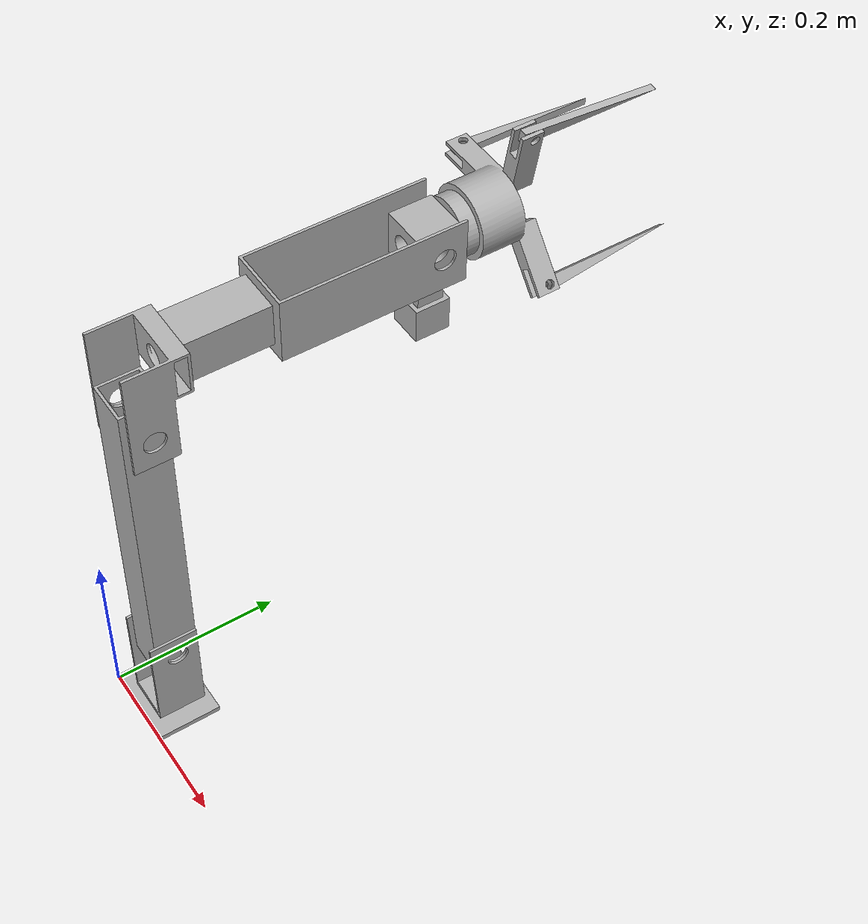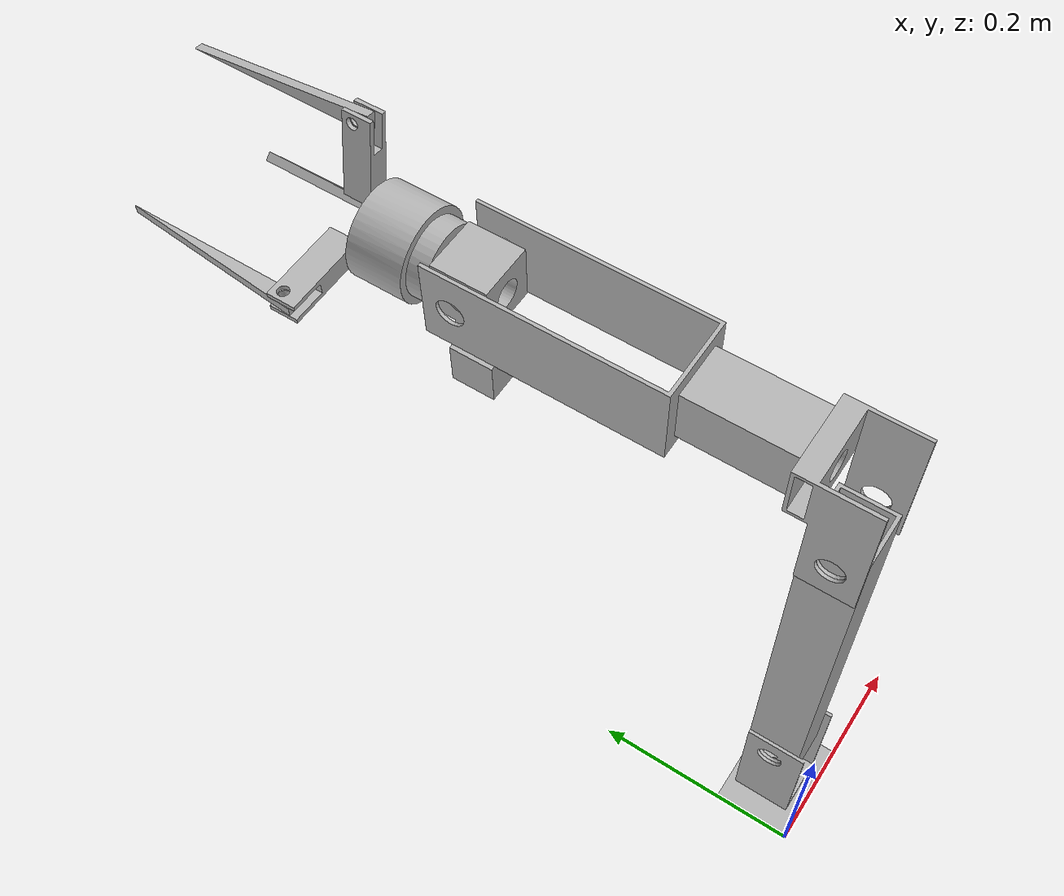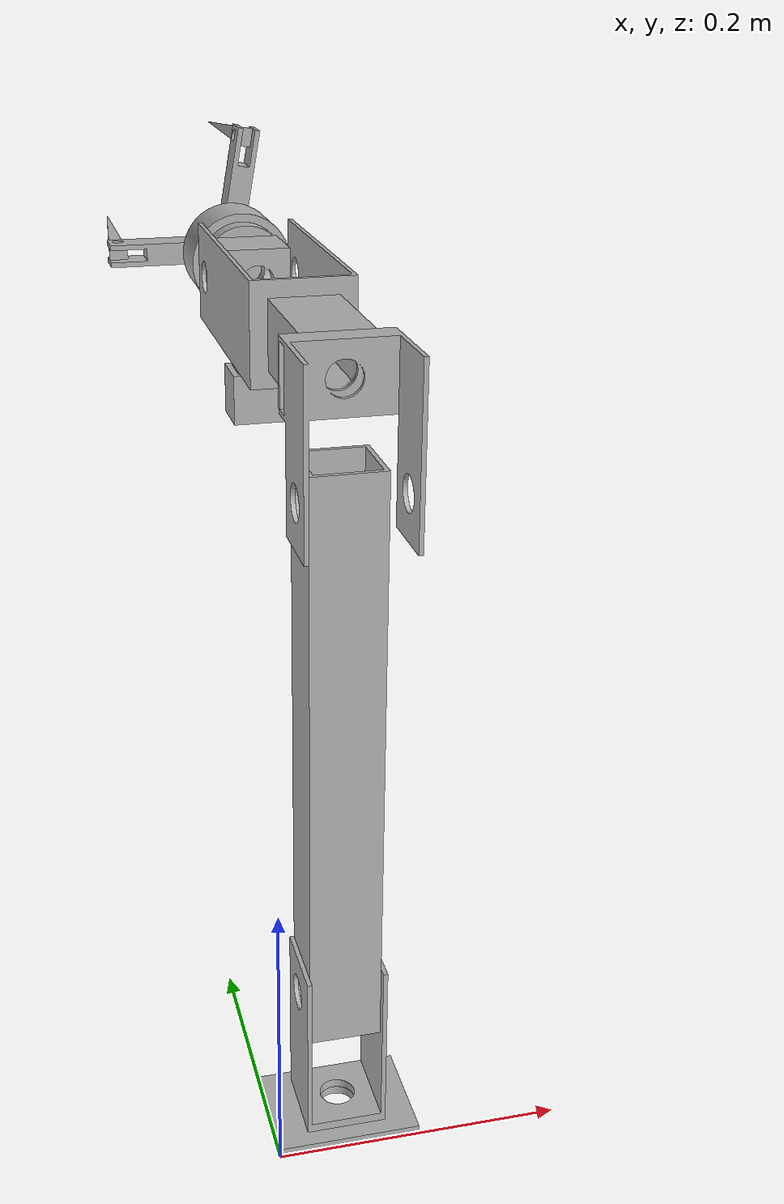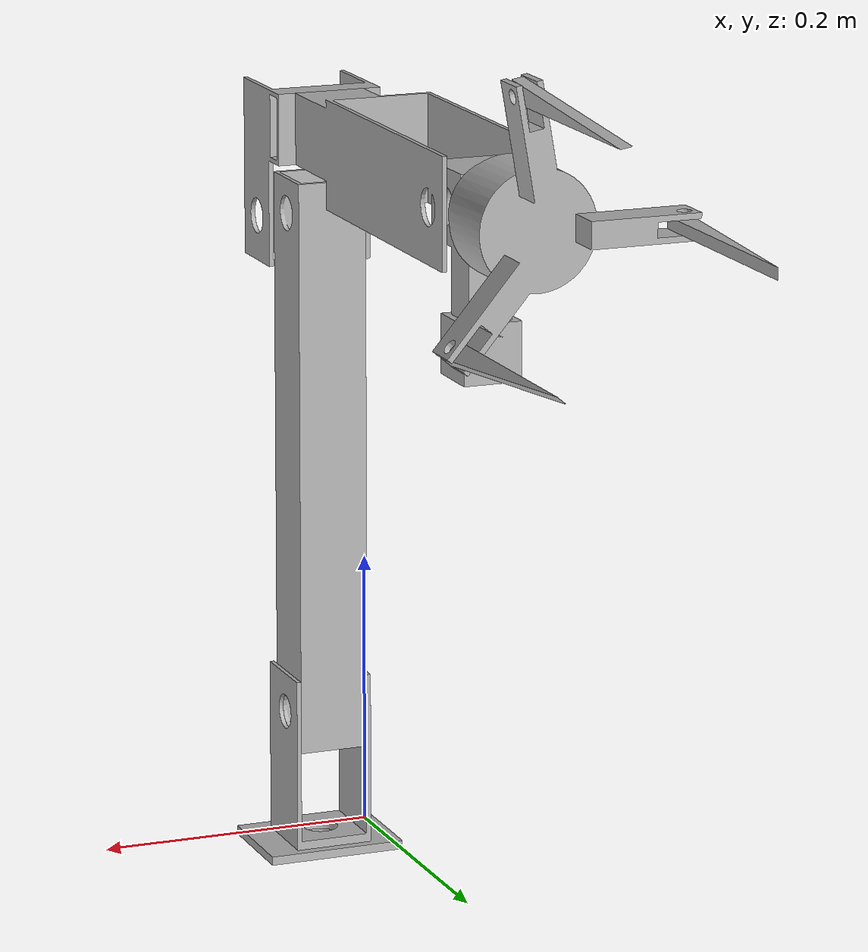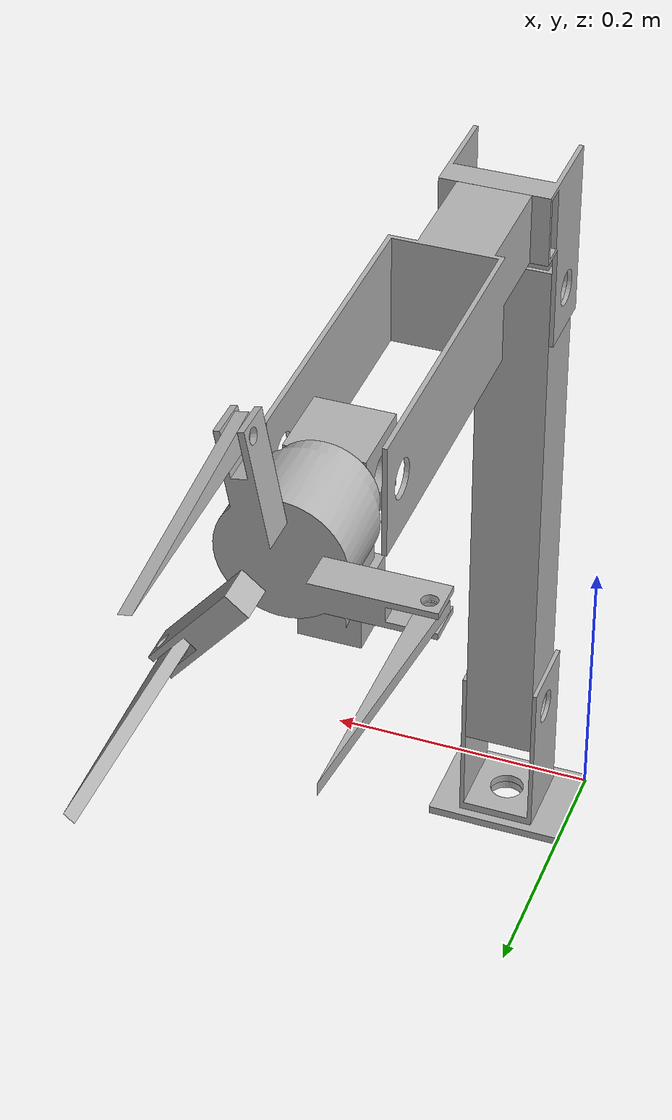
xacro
<?xml version="1.0" ?>
<robot name="Arm_2023" xmlns:xacro="http://www.ros.org/wiki/xacro">

<xacro:include filename="$(find rover)/rover/simulation/urdfs/Arm_2023/materials.xacro" />
<link name="base_link">
  <inertial>
    <origin xyz="0.049999999999908465 0.03732491617294113 0.003125" rpy="0 0 0"/>
    <mass value="0.3438852516301944"/>
    <inertia ixx="0.000173" iyy="0.000307" izz="0.000477" ixy="0.0" iyz="0.0" ixz="0.0"/>
  </inertial>
  <visual>
    <origin xyz="0 0 0" rpy="0 0 0"/>
    <geometry>
      <mesh filename="package://rover/rover/simulation/meshes/Arm_2023/base_link.stl" scale="0.001 0.001 0.001"/>
    </geometry>
    <material name="silver"/>
  </visual>
  <collision>
    <origin xyz="0 0 0" rpy="0 0 0"/>
    <geometry>
      <mesh filename="package://rover/rover/simulation/meshes/Arm_2023/base_link.stl" scale="0.001 0.001 0.001"/>
    </geometry>
  </collision>
</link>

<!-- Target Position Arm -->

<link name="Link_2">
  <inertial>
    <origin xyz="0.025 -3.469446951953614e-17 0.18250000000000027" rpy="0 0 0"/>
    <mass value="1.86067089388539"/>
    <inertia ixx="0.02649" iyy="0.026465" izz="0.001376" ixy="-0.0" iyz="0.0" ixz="-0.0"/>
  </inertial>
  <visual>
    <origin xyz="-0.025 -0.043125 -0.1039" rpy="0 0 0"/>
    <geometry>
      <mesh filename="package://rover/rover/simulation/meshes/Arm_2023/Link_2_1.stl" scale="0.001 0.001 0.001"/>
    </geometry>
    <material name="silver"/>
  </visual>
  <collision>
    <origin xyz="-0.025 -0.043125 -0.1039" rpy="0 0 0"/>
    <geometry>
      <mesh filename="package://rover/rover/simulation/meshes/Arm_2023/Link_2_1.stl" scale="0.001 0.001 0.001"/>
    </geometry>
  </collision>
</link>

<link name="Link_3">
  <inertial>
    <origin xyz="0.03437499999999986 -0.04852387230509649 0.01494234846228587" rpy="0 0 0"/>
    <mass value="0.4930537063853911"/>
    <inertia ixx="0.000808" iyy="0.000697" izz="0.001059" ixy="0.0" iyz="0.000147" ixz="0.0"/>
  </inertial>
  <visual>
    <origin xyz="-0.025 -0.043125 -0.4689" rpy="0 0 0"/>
    <geometry>
      <mesh filename="package://rover/rover/simulation/meshes/Arm_2023/Link_3_1.stl" scale="0.001 0.001 0.001"/>
    </geometry>
    <material name="silver"/>
  </visual>
  <collision>
    <origin xyz="-0.025 -0.043125 -0.4689" rpy="0 0 0"/>
    <geometry>
      <mesh filename="package://rover/rover/simulation/meshes/Arm_2023/Link_3_1.stl" scale="0.001 0.001 0.001"/>
    </geometry>
  </collision>
</link>

<link name="Link_4">
  <inertial>
    <origin xyz="-4.544770722816893e-05 5.898059818321144e-17 0.13249483155448072" rpy="0 0 0"/>
    <mass value="1.3362092993202992"/>
    <inertia ixx="0.010972" iyy="0.01038" izz="0.00176" ixy="0.0" iyz="0.0" ixz="-5e-06"/>
  </inertial>
  <visual>
    <origin xyz="-0.059375 0.025375 -0.5139" rpy="0 0 0"/>
    <geometry>
      <mesh filename="package://rover/rover/simulation/meshes/Arm_2023/Link_4_1.stl" scale="0.001 0.001 0.001"/>
    </geometry>
    <material name="silver"/>
  </visual>
  <collision>
    <origin xyz="-0.059375 0.025375 -0.5139" rpy="0 0 0"/>
    <geometry>
      <mesh filename="package://rover/rover/simulation/meshes/Arm_2023/Link_4_1.stl" scale="0.001 0.001 0.001"/>
    </geometry>
  </collision>
</link>

<link name="Link_5">
  <inertial>
    <origin xyz="-0.024457508265359702 0.028875000000000362 -0.00023164099942307725" rpy="0 0 0"/>
    <mass value="1.03093485941646"/>
    <inertia ixx="0.000373" iyy="0.001033" izz="0.001033" ixy="0.0" iyz="0.0" ixz="-8e-06"/>
  </inertial>
  <visual>
    <origin xyz="-0.0667 0.05425 -0.790676" rpy="0 0 0"/>
    <geometry>
      <mesh filename="package://rover/rover/simulation/meshes/Arm_2023/Link_5_1.stl" scale="0.001 0.001 0.001"/>
    </geometry>
    <material name="silver"/>
  </visual>
  <collision>
    <origin xyz="-0.0667 0.05425 -0.790676" rpy="0 0 0"/>
    <geometry>
      <mesh filename="package://rover/rover/simulation/meshes/Arm_2023/Link_5_1.stl" scale="0.001 0.001 0.001"/>
    </geometry>
  </collision>
</link>

<link name="Link_1">
  <inertial>
    <origin xyz="-7.179673522372809e-14 -0.00017173384764001404 0.045632894964534494" rpy="0 0 0"/>
    <mass value="0.4382416946666404"/>
    <inertia ixx="0.000836" iyy="0.000966" izz="0.000383" ixy="0.0" iyz="4e-06" ixz="-0.0"/>
  </inertial>
  <visual>
    <origin xyz="-0.05 -0.04 -0.00625" rpy="0 0 0"/>
    <geometry>
      <mesh filename="package://rover/rover/simulation/meshes/Arm_2023/Link_1_1.stl" scale="0.001 0.001 0.001"/>
    </geometry>
    <material name="silver"/>
  </visual>
  <collision>
    <origin xyz="-0.05 -0.04 -0.00625" rpy="0 0 0"/>
    <geometry>
      <mesh filename="package://rover/rover/simulation/meshes/Arm_2023/Link_1_1.stl" scale="0.001 0.001 0.001"/>
    </geometry>
  </collision>
</link>

<link name="Link_6">
  <inertial>
    <origin xyz="0.0007934173167834443 -0.0006657561778822887 0.04453519096184422" rpy="0 0 0"/>
    <mass value="3.060647277391577"/>
    <inertia ixx="0.003765" iyy="0.003842" izz="0.003929" ixy="0.000217" iyz="7.2e-05" ixz="-8.6e-05"/>
  </inertial>
  <visual>
    <origin xyz="-0.059375 0.025375 -0.815676" rpy="0 0 0"/>
    <geometry>
      <mesh filename="package://rover/rover/simulation/meshes/Arm_2023/Link_6_1.stl" scale="0.001 0.001 0.001"/>
    </geometry>
    <material name="silver"/>
  </visual>
  <collision>
    <origin xyz="-0.059375 0.025375 -0.815676" rpy="0 0 0"/>
    <geometry>
      <mesh filename="package://rover/rover/simulation/meshes/Arm_2023/Link_6_1.stl" scale="0.001 0.001 0.001"/>
    </geometry>
  </collision>
</link>

<link name="Link_7">
  <inertial>
    <origin xyz="-0.0017868967775850602 -0.005028096180721024 0.04636811966902066" rpy="0 0 0"/>
    <mass value="0.07042769953386388"/>
    <inertia ixx="9.8e-05" iyy="9.8e-05" izz="1e-06" ixy="0.0" iyz="3e-06" ixz="-4e-06"/>
  </inertial>
  <visual>
    <origin xyz="0.007887 -0.037592 -0.899176" rpy="0 0 0"/>
    <geometry>
      <mesh filename="package://rover/rover/simulation/meshes/Arm_2023/Link_7_1.stl" scale="0.001 0.001 0.001"/>
    </geometry>
    <material name="silver"/>
  </visual>
  <collision>
    <origin xyz="0.007887 -0.037592 -0.899176" rpy="0 0 0"/>
    <geometry>
      <mesh filename="package://rover/rover/simulation/meshes/Arm_2023/Link_7_1.stl" scale="0.001 0.001 0.001"/>
    </geometry>
  </collision>
</link>

<link name="Camera_link">
  <inertial>
    <origin xyz="-0.01999999999995162 3.608224830031759e-16 0.0008309682104639116" rpy="0 0 0"/>
    <mass value="0.5216667986958432"/>
    <inertia ixx="0.000144" iyy="0.000144" izz="0.000135" ixy="0.0" iyz="0.0" ixz="-0.0"/>
  </inertial>
  <visual>
    <origin xyz="0.015625 0.025375 -0.79" rpy="0 0 0"/>
    <geometry>
      <mesh filename="package://rover/rover/simulation/meshes/Arm_2023/Camera_link_1.stl" scale="0.001 0.001 0.001"/>
    </geometry>
    <material name="silver"/>
  </visual>
  <collision>
    <origin xyz="0.015625 0.025375 -0.79" rpy="0 0 0"/>
    <geometry>
      <mesh filename="package://rover/rover/simulation/meshes/Arm_2023/Camera_link_1.stl" scale="0.001 0.001 0.001"/>
    </geometry>
  </collision>
</link>

<link name="Link_8">
  <inertial>
    <origin xyz="-0.002703449377635364 0.004600114186135835 0.04636811966902088" rpy="0 0 0"/>
    <mass value="0.07042769953386384"/>
    <inertia ixx="9.8e-05" iyy="9.8e-05" izz="1e-06" ixy="-0.0" iyz="1e-06" ixz="5e-06"/>
  </inertial>
  <visual>
    <origin xyz="-0.150846 0.014323 -0.899176" rpy="0 0 0"/>
    <geometry>
      <mesh filename="package://rover/rover/simulation/meshes/Arm_2023/Link_8_1.stl" scale="0.001 0.001 0.001"/>
    </geometry>
    <material name="silver"/>
  </visual>
  <collision>
    <origin xyz="-0.150846 0.014323 -0.899176" rpy="0 0 0"/>
    <geometry>
      <mesh filename="package://rover/rover/simulation/meshes/Arm_2023/Link_8_1.stl" scale="0.001 0.001 0.001"/>
    </geometry>
  </collision>
</link>

<link name="Link_9">
  <inertial>
    <origin xyz="0.005000000000008033 0.001863066826134921 0.04636811966902088" rpy="0 0 0"/>
    <mass value="0.07042769953386384"/>
    <inertia ixx="9.8e-05" iyy="9.8e-05" izz="1e-06" ixy="-0.0" iyz="-5e-06" ixz="0.0"/>
  </inertial>
  <visual>
    <origin xyz="-0.054375 0.117375 -0.899176" rpy="0 0 0"/>
    <geometry>
      <mesh filename="package://rover/rover/simulation/meshes/Arm_2023/Link_9_1.stl" scale="0.001 0.001 0.001"/>
    </geometry>
    <material name="silver"/>
  </visual>
  <collision>
    <origin xyz="-0.054375 0.117375 -0.899176" rpy="0 0 0"/>
    <geometry>
      <mesh filename="package://rover/rover/simulation/meshes/Arm_2023/Link_9_1.stl" scale="0.001 0.001 0.001"/>
    </geometry>
  </collision>
</link>

<joint name="Joint_1" type="continuous">
  <origin xyz="0.05 0.04 0.00625" rpy="0 0 0"/>
  <parent link="base_link"/>
  <child link="Link_1"/>
  <axis xyz="0.0 0.0 1.0"/>
</joint>

<joint name="Joint_2" type="continuous">
  <origin xyz="-0.025 0.003125 0.09765" rpy="0 0 0"/>
  <parent link="Link_1"/>
  <child link="Link_2"/>
  <axis xyz="1.0 0.0 -0.0"/>
</joint>

<joint name="Joint_3" type="continuous">
  <origin xyz="0.0 0.0 0.365" rpy="-1.57 0 0"/>
  <parent link="Link_2"/>
  <child link="Link_3"/>
  <axis xyz="1.0 -0.0 0.0"/>
</joint>

<joint name="Joint_4" type="continuous">
  <origin xyz="0.034375 -0.0685 0.045" rpy="0 0 -1.57"/>
  <parent link="Link_3"/>
  <child link="Link_4"/>
  <axis xyz="0.0 0.0 1.0"/>
</joint>

<joint name="Joint_5" type="continuous">
  <origin xyz="0.007325 -0.028875 0.276776" rpy="0 0 0"/>
  <parent link="Link_4"/>
  <child link="Link_5"/>
  <axis xyz="-0.0 -1.0 -0.0"/>
</joint>

<joint name="Joint_6" type="continuous">
  <origin xyz="-0.007325 0.028875 0.025" rpy="0 0 0"/>
  <parent link="Link_5"/>
  <child link="Link_6"/>
  <axis xyz="-0.0 0.0 1.0"/>
</joint>

<joint name="Joint_7" type="continuous">
  <origin xyz="-0.067262 0.062967 0.0835" rpy="0 0 0"/>
  <parent link="Link_6"/>
  <child link="Link_7"/>
  <axis xyz="0.642788 0.766044 0.0"/>
</joint>

<joint name="Camera_Joint" type="fixed">
  <origin xyz="-0.082325 0.028875 -0.000676" rpy="0 0 0"/>
  <parent link="Link_5"/>
  <child link="Camera_link"/>
</joint>

<joint name="Joint_8" type="continuous">
  <origin xyz="0.091471 0.011052 0.0835" rpy="0 0 0"/>
  <parent link="Link_6"/>
  <child link="Link_8"/>
  <axis xyz="0.173648 -0.984808 -0.0"/>
</joint>

<joint name="Joint_9" type="continuous">
  <origin xyz="-0.005 -0.092 0.0835" rpy="0 0 0"/>
  <parent link="Link_6"/>
  <child link="Link_9"/>
  <axis xyz="-1.0 0.0 0.0"/>
</joint>

<!-- Real Arm -->

<link name="Real_Link_2">
  <inertial>
    <origin xyz="0.025 -3.469446951953614e-17 0.18250000000000027" rpy="0 0 0"/>
    <mass value="1.86067089388539"/>
    <inertia ixx="0.02649" iyy="0.026465" izz="0.001376" ixy="-0.0" iyz="0.0" ixz="-0.0"/>
  </inertial>
  <visual>
    <origin xyz="-0.025 -0.043125 -0.1039" rpy="0 0 0"/>
    <geometry>
      <mesh filename="package://rover/rover/simulation/meshes/Arm_2023/Link_2_1.stl" scale="0.001 0.001 0.001"/>
    </geometry>
    <material name="sky-blue"/>
  </visual>
  <collision>
    <origin xyz="-0.025 -0.043125 -0.1039" rpy="0 0 0"/>
    <geometry>
      <mesh filename="package://rover/rover/simulation/meshes/Arm_2023/Link_2_1.stl" scale="0.001 0.001 0.001"/>
    </geometry>
  </collision>
</link>

<link name="Real_Link_3">
  <inertial>
    <origin xyz="0.03437499999999986 -0.04852387230509649 0.01494234846228587" rpy="0 0 0"/>
    <mass value="0.4930537063853911"/>
    <inertia ixx="0.000808" iyy="0.000697" izz="0.001059" ixy="0.0" iyz="0.000147" ixz="0.0"/>
  </inertial>
  <visual>
    <origin xyz="-0.025 -0.043125 -0.4689" rpy="0 0 0"/>
    <geometry>
      <mesh filename="package://rover/rover/simulation/meshes/Arm_2023/Link_3_1.stl" scale="0.001 0.001 0.001"/>
    </geometry>
    <material name="sky-blue"/>
  </visual>
  <collision>
    <origin xyz="-0.025 -0.043125 -0.4689" rpy="0 0 0"/>
    <geometry>
      <mesh filename="package://rover/rover/simulation/meshes/Arm_2023/Link_3_1.stl" scale="0.001 0.001 0.001"/>
    </geometry>
  </collision>
</link>

<link name="Real_Link_4">
  <inertial>
    <origin xyz="-4.544770722816893e-05 5.898059818321144e-17 0.13249483155448072" rpy="0 0 0"/>
    <mass value="1.3362092993202992"/>
    <inertia ixx="0.010972" iyy="0.01038" izz="0.00176" ixy="0.0" iyz="0.0" ixz="-5e-06"/>
  </inertial>
  <visual>
    <origin xyz="-0.059375 0.025375 -0.5139" rpy="0 0 0"/>
    <geometry>
      <mesh filename="package://rover/rover/simulation/meshes/Arm_2023/Link_4_1.stl" scale="0.001 0.001 0.001"/>
    </geometry>
    <material name="sky-blue"/>
  </visual>
  <collision>
    <origin xyz="-0.059375 0.025375 -0.5139" rpy="0 0 0"/>
    <geometry>
      <mesh filename="package://rover/rover/simulation/meshes/Arm_2023/Link_4_1.stl" scale="0.001 0.001 0.001"/>
    </geometry>
  </collision>
</link>

<link name="Real_Link_5">
  <inertial>
    <origin xyz="-0.024457508265359702 0.028875000000000362 -0.00023164099942307725" rpy="0 0 0"/>
    <mass value="1.03093485941646"/>
    <inertia ixx="0.000373" iyy="0.001033" izz="0.001033" ixy="0.0" iyz="0.0" ixz="-8e-06"/>
  </inertial>
  <visual>
    <origin xyz="-0.0667 0.05425 -0.790676" rpy="0 0 0"/>
    <geometry>
      <mesh filename="package://rover/rover/simulation/meshes/Arm_2023/Link_5_1.stl" scale="0.001 0.001 0.001"/>
    </geometry>
    <material name="sky-blue"/>
  </visual>
  <collision>
    <origin xyz="-0.0667 0.05425 -0.790676" rpy="0 0 0"/>
    <geometry>
      <mesh filename="package://rover/rover/simulation/meshes/Arm_2023/Link_5_1.stl" scale="0.001 0.001 0.001"/>
    </geometry>
  </collision>
</link>

<link name="Real_Link_1">
  <inertial>
    <origin xyz="-7.179673522372809e-14 -0.00017173384764001404 0.045632894964534494" rpy="0 0 0"/>
    <mass value="0.4382416946666404"/>
    <inertia ixx="0.000836" iyy="0.000966" izz="0.000383" ixy="0.0" iyz="4e-06" ixz="-0.0"/>
  </inertial>
  <visual>
    <origin xyz="-0.05 -0.04 -0.00625" rpy="0 0 0"/>
    <geometry>
      <mesh filename="package://rover/rover/simulation/meshes/Arm_2023/Link_1_1.stl" scale="0.001 0.001 0.001"/>
    </geometry>
    <material name="sky-blue"/>
  </visual>
  <collision>
    <origin xyz="-0.05 -0.04 -0.00625" rpy="0 0 0"/>
    <geometry>
      <mesh filename="package://rover/rover/simulation/meshes/Arm_2023/Link_1_1.stl" scale="0.001 0.001 0.001"/>
    </geometry>
  </collision>
</link>

<link name="Real_Link_6">
  <inertial>
    <origin xyz="0.0007934173167834443 -0.0006657561778822887 0.04453519096184422" rpy="0 0 0"/>
    <mass value="3.060647277391577"/>
    <inertia ixx="0.003765" iyy="0.003842" izz="0.003929" ixy="0.000217" iyz="7.2e-05" ixz="-8.6e-05"/>
  </inertial>
  <visual>
    <origin xyz="-0.059375 0.025375 -0.815676" rpy="0 0 0"/>
    <geometry>
      <mesh filename="package://rover/rover/simulation/meshes/Arm_2023/Link_6_1.stl" scale="0.001 0.001 0.001"/>
    </geometry>
    <material name="sky-blue"/>
  </visual>
  <collision>
    <origin xyz="-0.059375 0.025375 -0.815676" rpy="0 0 0"/>
    <geometry>
      <mesh filename="package://rover/rover/simulation/meshes/Arm_2023/Link_6_1.stl" scale="0.001 0.001 0.001"/>
    </geometry>
  </collision>
</link>

<link name="Real_Link_7">
  <inertial>
    <origin xyz="-0.0017868967775850602 -0.005028096180721024 0.04636811966902066" rpy="0 0 0"/>
    <mass value="0.07042769953386388"/>
    <inertia ixx="9.8e-05" iyy="9.8e-05" izz="1e-06" ixy="0.0" iyz="3e-06" ixz="-4e-06"/>
  </inertial>
  <visual>
    <origin xyz="0.007887 -0.037592 -0.899176" rpy="0 0 0"/>
    <geometry>
      <mesh filename="package://rover/rover/simulation/meshes/Arm_2023/Link_7_1.stl" scale="0.001 0.001 0.001"/>
    </geometry>
    <material name="sky-blue"/>
  </visual>
  <collision>
    <origin xyz="0.007887 -0.037592 -0.899176" rpy="0 0 0"/>
    <geometry>
      <mesh filename="package://rover/rover/simulation/meshes/Arm_2023/Link_7_1.stl" scale="0.001 0.001 0.001"/>
    </geometry>
  </collision>
</link>

<link name="Real_Camera_link">
  <inertial>
    <origin xyz="-0.01999999999995162 3.608224830031759e-16 0.0008309682104639116" rpy="0 0 0"/>
    <mass value="0.5216667986958432"/>
    <inertia ixx="0.000144" iyy="0.000144" izz="0.000135" ixy="0.0" iyz="0.0" ixz="-0.0"/>
  </inertial>
  <visual>
    <origin xyz="0.015625 0.025375 -0.79" rpy="0 0 0"/>
    <geometry>
      <mesh filename="package://rover/rover/simulation/meshes/Arm_2023/Camera_link_1.stl" scale="0.001 0.001 0.001"/>
    </geometry>
    <material name="sky-blue"/>
  </visual>
  <collision>
    <origin xyz="0.015625 0.025375 -0.79" rpy="0 0 0"/>
    <geometry>
      <mesh filename="package://rover/rover/simulation/meshes/Arm_2023/Camera_link_1.stl" scale="0.001 0.001 0.001"/>
    </geometry>
  </collision>
</link>

<link name="Real_Link_8">
  <inertial>
    <origin xyz="-0.002703449377635364 0.004600114186135835 0.04636811966902088" rpy="0 0 0"/>
    <mass value="0.07042769953386384"/>
    <inertia ixx="9.8e-05" iyy="9.8e-05" izz="1e-06" ixy="-0.0" iyz="1e-06" ixz="5e-06"/>
  </inertial>
  <visual>
    <origin xyz="-0.150846 0.014323 -0.899176" rpy="0 0 0"/>
    <geometry>
      <mesh filename="package://rover/rover/simulation/meshes/Arm_2023/Link_8_1.stl" scale="0.001 0.001 0.001"/>
    </geometry>
    <material name="sky-blue"/>
  </visual>
  <collision>
    <origin xyz="-0.150846 0.014323 -0.899176" rpy="0 0 0"/>
    <geometry>
      <mesh filename="package://rover/rover/simulation/meshes/Arm_2023/Link_8_1.stl" scale="0.001 0.001 0.001"/>
    </geometry>
  </collision>
</link>

<link name="Real_Link_9">
  <inertial>
    <origin xyz="0.005000000000008033 0.001863066826134921 0.04636811966902088" rpy="0 0 0"/>
    <mass value="0.07042769953386384"/>
    <inertia ixx="9.8e-05" iyy="9.8e-05" izz="1e-06" ixy="-0.0" iyz="-5e-06" ixz="0.0"/>
  </inertial>
  <visual>
    <origin xyz="-0.054375 0.117375 -0.899176" rpy="0 0 0"/>
    <geometry>
      <mesh filename="package://rover/rover/simulation/meshes/Arm_2023/Link_9_1.stl" scale="0.001 0.001 0.001"/>
    </geometry>
    <material name="sky-blue"/>
  </visual>
  <collision>
    <origin xyz="-0.054375 0.117375 -0.899176" rpy="0 0 0"/>
    <geometry>
      <mesh filename="package://rover/rover/simulation/meshes/Arm_2023/Link_9_1.stl" scale="0.001 0.001 0.001"/>
    </geometry>
  </collision>
</link>

<joint name="Real_Joint_1" type="continuous">
  <origin xyz="0.05 0.04 0.00625" rpy="0 0 0"/>
  <parent link="base_link"/>
  <child link="Real_Link_1"/>
  <axis xyz="0.0 0.0 1.0"/>
</joint>

<joint name="Real_Joint_2" type="continuous">
  <origin xyz="-0.025 0.003125 0.09765" rpy="0 0 0"/>
  <parent link="Real_Link_1"/>
  <child link="Real_Link_2"/>
  <axis xyz="1.0 0.0 -0.0"/>
</joint>

<joint name="Real_Joint_3" type="continuous">
  <origin xyz="0.0 0.0 0.365" rpy="-1.57 0 0"/>
  <parent link="Real_Link_2"/>
  <child link="Real_Link_3"/>
  <axis xyz="1.0 -0.0 0.0"/>
</joint>

<joint name="Real_Joint_4" type="continuous">
  <origin xyz="0.034375 -0.0685 0.045" rpy="0 0 -1.57"/>
  <parent link="Real_Link_3"/>
  <child link="Real_Link_4"/>
  <axis xyz="0.0 0.0 1.0"/>
</joint>

<joint name="Real_Joint_5" type="continuous">
  <origin xyz="0.007325 -0.028875 0.276776" rpy="0 0 0"/>
  <parent link="Real_Link_4"/>
  <child link="Real_Link_5"/>
  <axis xyz="-0.0 -1.0 -0.0"/>
</joint>

<joint name="Real_Joint_6" type="continuous">
  <origin xyz="-0.007325 0.028875 0.025" rpy="0 0 0"/>
  <parent link="Real_Link_5"/>
  <child link="Real_Link_6"/>
  <axis xyz="-0.0 0.0 -1.0"/>
</joint>

<joint name="Real_Joint_7" type="continuous">
  <origin xyz="-0.067262 0.062967 0.0835" rpy="0 0 0"/>
  <parent link="Real_Link_6"/>
  <child link="Real_Link_7"/>
  <axis xyz="0.642788 0.766044 0.0"/>
</joint>

<joint name="Real_Camera_Joint" type="fixed">
  <origin xyz="-0.082325 0.028875 -0.000676" rpy="0 0 0"/>
  <parent link="Real_Link_5"/>
  <child link="Real_Camera_link"/>
</joint>

<joint name="Real_Joint_8" type="continuous">
  <origin xyz="0.091471 0.011052 0.0835" rpy="0 0 0"/>
  <parent link="Real_Link_6"/>
  <child link="Real_Link_8"/>
  <axis xyz="0.173648 -0.984808 -0.0"/>
</joint>

<joint name="Real_Joint_9" type="continuous">
  <origin xyz="-0.005 -0.092 0.0835" rpy="0 0 0"/>
  <parent link="Real_Link_6"/>
  <child link="Real_Link_9"/>
  <axis xyz="-1.0 0.0 0.0"/>
</joint>

</robot>

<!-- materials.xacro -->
<robot name="Final" xmlns:xacro="http://www.ros.org/wiki/xacro" >

<material name="silver">
  <color rgba="0.700 0.700 0.700 1.000"/>
</material>

<material name="sky-blue">
  <color rgba="0 0.700 0.886 1.00"/>
</material>

</robot>
